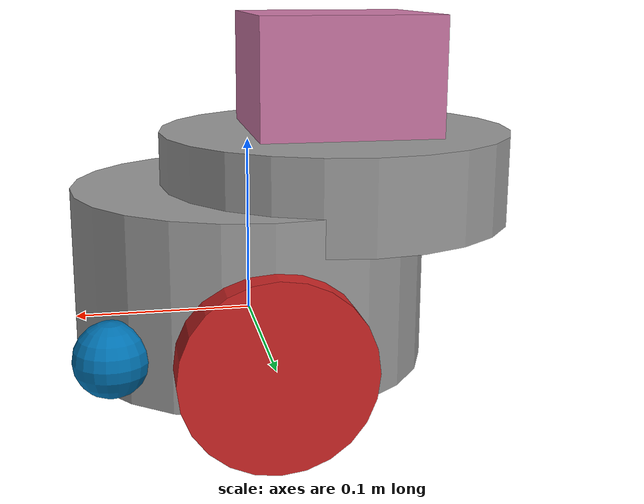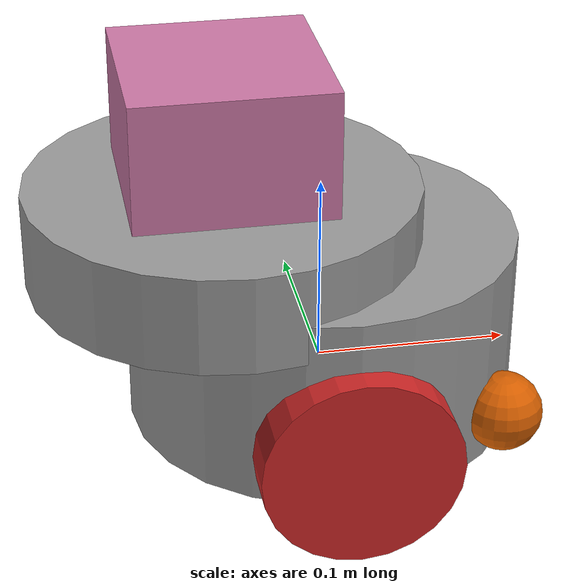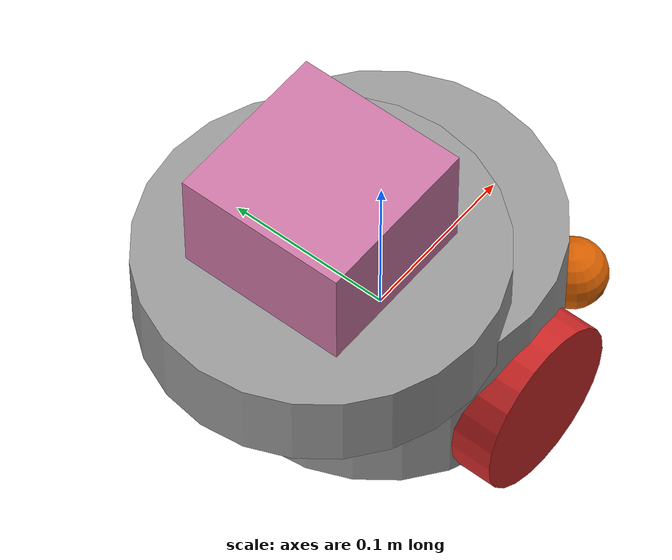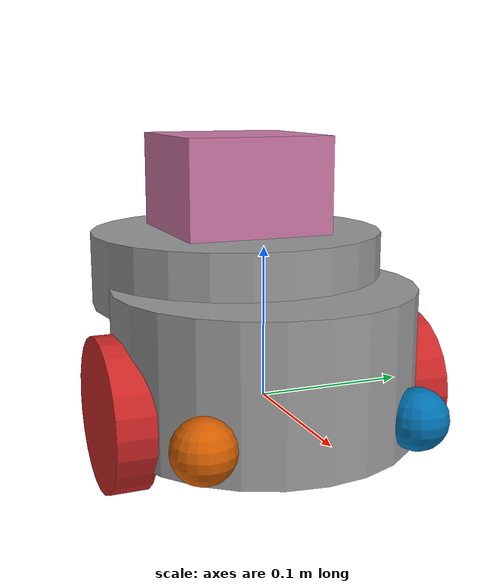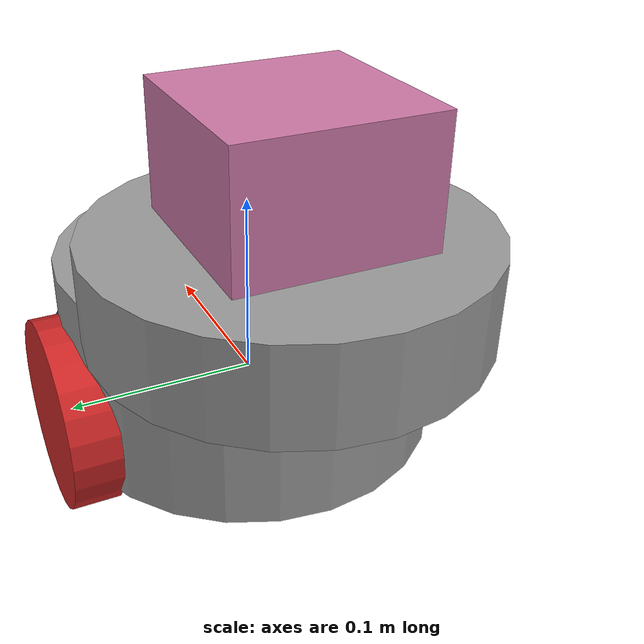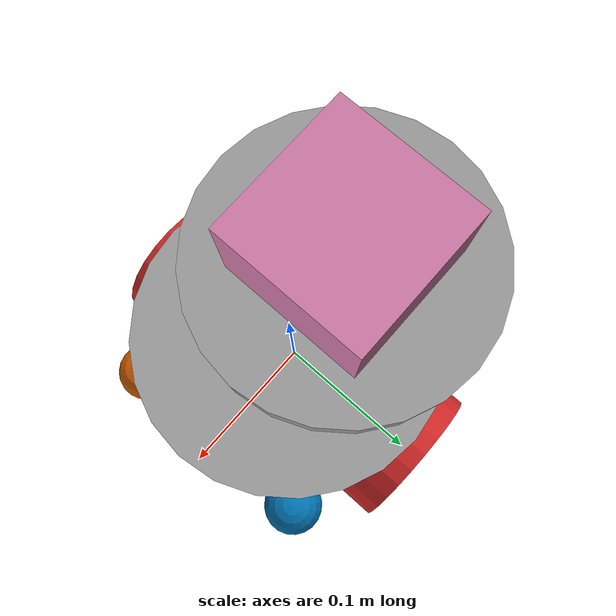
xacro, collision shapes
<?xml version='1.0'?>
<robot name="my_fbot" xmlns:xacro="http://www.ros.org/wiki/xacro">

    <xacro:include filename="$(find my_fbot)/urdf/my_fbot_dual_cam.gazebo"/>

    <!--    VARIABLES-->
    <xacro:property name="chassis_height" value=".1"/>
    <xacro:property name="chassis_radius" value=".1"/>
    <xacro:property name="sup_wheels_height" value="-0.0249"/>

    <xacro:property name="wheel_thickness" value=".025"/>
    <xacro:property name="wheel_radius" value=".05"/>

    <!--    MATERIALS-->
    <gazebo reference="chassis">
        <material>Gazebo/Grey</material>
    </gazebo>

    <gazebo reference="left_wheel">
        <material>Gazebo/Red</material>
    </gazebo>

    <gazebo reference="right_wheel">
        <material>Gazebo/Red</material>
    </gazebo>

    <!--link to ground-->
    <link name="robot_footprint"/>

    <joint name="robot_footprint_joint" type="fixed">
        <origin xyz="0 0 0" rpy="0 0 0"/>
        <parent link="robot_footprint"/>
        <child link="chassis"/>
    </joint>

    <!--    chassis link-->
    <link name='chassis'>
        <pose>0 0 0 0 0 0</pose>

        <inertial>
            <mass value="15.0"/>
            <origin xyz="0.0 0 0" rpy=" 0 0 0"/>
            <inertia
                    ixx="0.1" ixy="0" ixz="0"
                    iyy="0.1" iyz="0"
                    izz="0.1"
            />
        </inertial>

        <collision name='collision'>
            <origin xyz="0 0 ${wheel_radius/2}" rpy=" 0 0 0"/>
            <geometry>
                <cylinder length="${chassis_height}" radius="${chassis_radius}"/>
            </geometry>
        </collision>

        <visual name='chassis_visual'>
            <origin xyz="0 0 ${wheel_radius/2}" rpy=" 0 0 0"/>
            <geometry>
                <cylinder length="${chassis_height}" radius="${chassis_radius}"/>
            </geometry>
        </visual>

        <!--        SUPPORT WHEELS-->
        <collision name='back_caster_collision'>
            <origin xyz="-${chassis_radius/3} 0 ${sup_wheels_height}" rpy=" 0 0 0"/>
            <geometry>
                <sphere radius="${wheel_radius/2}"/>
            </geometry>
        </collision>

        <visual name='back_caster_visual'>
            <origin xyz="-${chassis_radius/3} 0 ${sup_wheels_height}" rpy=" 0 0 0"/>
            <geometry>
                <sphere radius="${wheel_radius/2}"/>
            </geometry>
        </visual>

        <collision name='front_caster_collision'>
            <origin xyz="${chassis_radius/3} 0 ${sup_wheels_height}" rpy=" 0 0 0"/>
            <geometry>
                <sphere radius="${wheel_radius/2}"/>
            </geometry>
        </collision>

        <visual name='front_caster_visual'>
            <origin xyz="${chassis_radius/3} 0 ${sup_wheels_height}" rpy=" 0 0 0"/>
            <geometry>
                <sphere radius="${wheel_radius/2}"/>
            </geometry>
        </visual>

        <!--        LIDAR SUPPORT-->
        <collision name='lidar_support_collision'>
            <origin xyz="-0.05 0 ${chassis_height-0.02}" rpy=" 0 0 0"/>
            <geometry>
                <cylinder length="0.05" radius="0.1"/>
            </geometry>
        </collision>

        <visual name='lidar_support_visual'>
            <origin xyz="-0.05 0 ${chassis_height-0.02}" rpy=" 0 0 0"/>
            <geometry>
                <cylinder length="0.02" radius="0.05"/>
            </geometry>
        </visual>

    </link>

    <!--    WHEELS LINKS-->
    <link name="left_wheel">
        <inertial>
            <mass value="5"/>
            <origin xyz="0 0 0" rpy="0 1.5707 1.5707"/>
            <inertia
                    ixx="0.1" ixy="0.0" ixz="0.0"
                    iyy="0.1" iyz="0.0"
                    izz="0.1"
            />
        </inertial>

        <collision>
            <origin xyz="0 0 0" rpy="0 1.5707 1.5707"/>
            <geometry>
                <cylinder radius="${wheel_radius}" length="${wheel_thickness}"/>
            </geometry>
        </collision>

        <visual>
            <origin xyz="0 0 0" rpy="0 1.5707 1.5707"/>
            <geometry>
                <cylinder radius="${wheel_radius}" length="${wheel_thickness}"/>
            </geometry>
        </visual>
    </link>

    <link name="right_wheel">
        <inertial>
            <mass value="5"/>
            <origin xyz="0 0 0" rpy="0 1.5707 1.5707"/>
            <inertia
                    ixx="0.1" ixy="0.0" ixz="0.0"
                    iyy="0.1" iyz="0.0"
                    izz="0.1"
            />
        </inertial>

        <collision>
            <origin xyz="0 0 0" rpy="0 1.5707 1.5707"/>
            <geometry>
                <cylinder radius="${wheel_radius}" length="${wheel_thickness}"/>
            </geometry>
        </collision>

        <visual>
            <origin xyz="0 0 0" rpy="0 1.5707 1.5707"/>
            <geometry>
                <cylinder radius="${wheel_radius}" length="${wheel_thickness}"/>
            </geometry>
        </visual>
    </link>

    <!--    CAMERA LEFT-->
    <link name="camera_left">
        <inertial>
            <mass value="0.1"/>
            <origin xyz="0 0 0" rpy="0 0 0"/>
            <inertia ixx="0.03" ixy="0.0" ixz="0.0" iyy="0.03" iyz="0.0" izz="0.03"/>
        </inertial>

        <collision>
            <origin xyz="0 0 0" rpy="0 0 0"/>
            <geometry>
                <sphere radius="0.02"/>
            </geometry>
        </collision>

        <visual>
            <origin xyz="0 0 0" rpy="0 0 0"/>
            <geometry>
                <mesh filename="package://computer_vision_pkg/meshes/head.dae" scale=".5 .5 .5"/>
            </geometry>
        </visual>
    </link>

    <!--    CAMERA RIGHT-->
    <link name="camera_right">
        <inertial>
            <mass value="0.1"/>
            <origin xyz="0 0 0" rpy="0 0 0"/>
            <inertia ixx="0.03" ixy="0.0" ixz="0.0" iyy="0.03" iyz="0.0" izz="0.03"/>
        </inertial>

        <collision>
            <origin xyz="0 0 0" rpy="0 0 0"/>
            <geometry>
                <sphere radius="0.02"/>
            </geometry>
        </collision>

        <visual>
            <origin xyz="0 0 0" rpy="0 0 0"/>
            <geometry>
                <mesh filename="package://computer_vision_pkg/meshes/head.dae" scale=".5 .5 .5"/>
            </geometry>
        </visual>
    </link>

    <!--    LIDAR-->
    <link name="hokuyo">
        <inertial>
            <mass value="1e-5"/>
            <origin xyz="0 0 0" rpy="0 0 0"/>
            <inertia
                    ixx="1e-6" ixy="0.0" ixz="0.0"
                    iyy="1e-6" iyz="0.0"
                    izz="1e-6"
            />
        </inertial>

        <collision>
            <origin xyz="0 0 0" rpy="0 0 0"/>
            <geometry>
                <box size="0.1 0.1 0.1"/>
            </geometry>
        </collision>

        <visual>
            <origin xyz="0 0 0" rpy="0 0 0"/>
            <geometry>
                <mesh filename="package://my_fbot/meshes/hokuyo.dae"/>
            </geometry>
        </visual>
    </link>

    <!--    JOINTS-->
    <joint type="continuous" name="left_wheel_hinge">
        <origin xyz="0 ${chassis_radius} 0" rpy="0 0 0"/>
        <parent link="chassis"/>
        <child link="left_wheel"/>
        <axis xyz="0 1 0" rpy="0 0 0"/>
        <limit effort="10000" velocity="1000"/>
        <dynamics damping="1.0" friction="1.0"/>
    </joint>

    <joint type="continuous" name="right_wheel_hinge">
        <origin xyz="0 -${chassis_radius} 0" rpy="0 0 0"/>
        <parent link="chassis"/>
        <child link="right_wheel"/>
        <axis xyz="0 1 0" rpy="0 0 0"/>
        <limit effort="10000" velocity="1000"/>
        <dynamics damping="1.0" friction="1.0"/>
    </joint>

    <joint name="camera_left_joint" type="fixed">
        <axis xyz="0 0 0"/>
        <origin xyz="0.08 0.07 ${chassis_height-0.1}" rpy="0 0 0.5"/>
        <parent link="chassis"/>
        <child link="camera_left"/>
    </joint>

        <joint name="camera_right_joint" type="fixed">
        <axis xyz="0 0 0"/>
        <origin xyz="0.08 -0.07 ${chassis_height-0.1}" rpy="0 0 -0.5"/>
        <parent link="chassis"/>
        <child link="camera_right"/>
    </joint>

    <joint name="hokuyo_joint" type="fixed">
        <origin xyz="-0.05 0 ${chassis_height+0.02}" rpy="0 0 0"/>
        <parent link="chassis"/>
        <child link="hokuyo"/>
        <axis xyz="0 1 0"/>
    </joint>

</robot>
